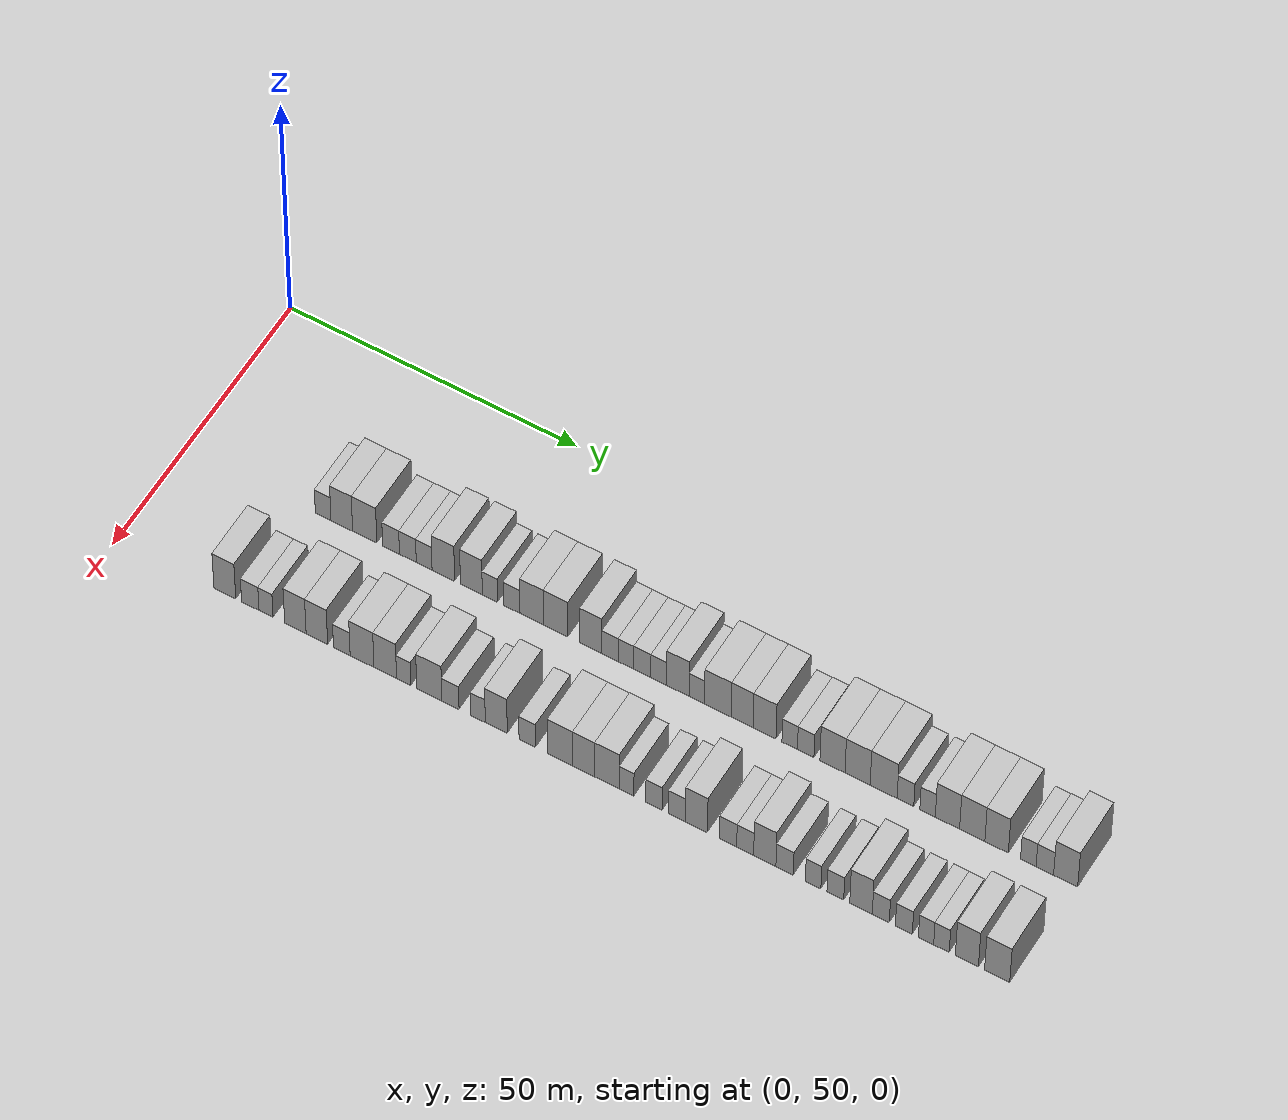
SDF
<sdf version="1.6">
 <world name="default">
  <model name="building_71">
   <static>1</static>
   <pose>25.0000 74.1208 0 0.000000 0.000000 0.000000</pose>
   <link name="link">
    <pose>0 0 3.00 0 0 0</pose>
    <collision name="collision"><geometry><box><size>10.0000 2.7130 6.0000</size></box></geometry></collision>
    <visual name="visual">
     <cast_shadows>0</cast_shadows>
     <geometry><box><size>10.0000 2.7130 6.0000</size></box></geometry>
     <material>
      <script>
       <uri>model://HANNAS_wall/materials/scripts</uri>
       <uri>model://HANNAS_wall/materials/textures</uri>
       <name>vrc/HANNAS_wall</name>
      </script>
     </material>
    </visual>
   </link>
  </model>
  <model name="building_72">
   <static>1</static>
   <pose>25.0000 77.3447 0 0.000000 0.000000 0.000000</pose>
   <link name="link">
    <pose>0 0 4.50 0 0 0</pose>
    <collision name="collision"><geometry><box><size>10.0000 3.7349 9.0000</size></box></geometry></collision>
    <visual name="visual">
     <cast_shadows>0</cast_shadows>
     <geometry><box><size>10.0000 3.7349 9.0000</size></box></geometry>
     <material>
      <script>
       <uri>model://HANNAS_wall/materials/scripts</uri>
       <uri>model://HANNAS_wall/materials/textures</uri>
       <name>vrc/HANNAS_wall</name>
      </script>
     </material>
    </visual>
   </link>
  </model>
  <model name="building_73">
   <static>1</static>
   <pose>25.0000 81.3042 0 0.000000 0.000000 0.000000</pose>
   <link name="link">
    <pose>0 0 4.50 0 0 0</pose>
    <collision name="collision"><geometry><box><size>10.0000 4.1841 9.0000</size></box></geometry></collision>
    <visual name="visual">
     <cast_shadows>0</cast_shadows>
     <geometry><box><size>10.0000 4.1841 9.0000</size></box></geometry>
     <material>
      <script>
       <uri>model://HANNAS_wall/materials/scripts</uri>
       <uri>model://HANNAS_wall/materials/textures</uri>
       <name>vrc/HANNAS_wall</name>
      </script>
     </material>
    </visual>
   </link>
  </model>
  <model name="building_74">
   <static>1</static>
   <pose>25.0000 85.8439 0 0.000000 0.000000 0.000000</pose>
   <link name="link">
    <pose>0 0 3.00 0 0 0</pose>
    <collision name="collision"><geometry><box><size>10.0000 2.8952 6.0000</size></box></geometry></collision>
    <visual name="visual">
     <cast_shadows>0</cast_shadows>
     <geometry><box><size>10.0000 2.8952 6.0000</size></box></geometry>
     <material>
      <script>
       <uri>model://HANNAS_wall/materials/scripts</uri>
       <uri>model://HANNAS_wall/materials/textures</uri>
       <name>vrc/HANNAS_wall</name>
      </script>
     </material>
    </visual>
   </link>
  </model>
  <model name="building_75">
   <static>1</static>
   <pose>25.0000 88.7409 0 0.000000 0.000000 0.000000</pose>
   <link name="link">
    <pose>0 0 3.00 0 0 0</pose>
    <collision name="collision"><geometry><box><size>10.0000 2.8988 6.0000</size></box></geometry></collision>
    <visual name="visual">
     <cast_shadows>0</cast_shadows>
     <geometry><box><size>10.0000 2.8988 6.0000</size></box></geometry>
     <material>
      <script>
       <uri>model://HANNAS_wall/materials/scripts</uri>
       <uri>model://HANNAS_wall/materials/textures</uri>
       <name>vrc/HANNAS_wall</name>
      </script>
     </material>
    </visual>
   </link>
  </model>
  <model name="building_76">
   <static>1</static>
   <pose>25.0000 91.5484 0 0.000000 0.000000 0.000000</pose>
   <link name="link">
    <pose>0 0 3.00 0 0 0</pose>
    <collision name="collision"><geometry><box><size>10.0000 2.7161 6.0000</size></box></geometry></collision>
    <visual name="visual">
     <cast_shadows>0</cast_shadows>
     <geometry><box><size>10.0000 2.7161 6.0000</size></box></geometry>
     <material>
      <script>
       <uri>model://HANNAS_wall/materials/scripts</uri>
       <uri>model://HANNAS_wall/materials/textures</uri>
       <name>vrc/HANNAS_wall</name>
      </script>
     </material>
    </visual>
   </link>
  </model>
  <model name="building_77">
   <static>1</static>
   <pose>25.0000 94.8378 0 0.000000 0.000000 0.000000</pose>
   <link name="link">
    <pose>0 0 4.50 0 0 0</pose>
    <collision name="collision"><geometry><box><size>10.0000 3.8628 9.0000</size></box></geometry></collision>
    <visual name="visual">
     <cast_shadows>0</cast_shadows>
     <geometry><box><size>10.0000 3.8628 9.0000</size></box></geometry>
     <material>
      <script>
       <uri>model://HANNAS_wall/materials/scripts</uri>
       <uri>model://HANNAS_wall/materials/textures</uri>
       <name>vrc/HANNAS_wall</name>
      </script>
     </material>
    </visual>
   </link>
  </model>
  <model name="building_78">
   <static>1</static>
   <pose>25.0000 99.6444 0 0.000000 0.000000 0.000000</pose>
   <link name="link">
    <pose>0 0 4.50 0 0 0</pose>
    <collision name="collision"><geometry><box><size>10.0000 3.7505 9.0000</size></box></geometry></collision>
    <visual name="visual">
     <cast_shadows>0</cast_shadows>
     <geometry><box><size>10.0000 3.7505 9.0000</size></box></geometry>
     <material>
      <script>
       <uri>model://HANNAS_wall/materials/scripts</uri>
       <uri>model://HANNAS_wall/materials/textures</uri>
       <name>vrc/HANNAS_wall</name>
      </script>
     </material>
    </visual>
   </link>
  </model>
  <model name="building_79">
   <static>1</static>
   <pose>25.0000 102.8215 0 0.000000 0.000000 0.000000</pose>
   <link name="link">
    <pose>0 0 3.00 0 0 0</pose>
    <collision name="collision"><geometry><box><size>10.0000 2.6037 6.0000</size></box></geometry></collision>
    <visual name="visual">
     <cast_shadows>0</cast_shadows>
     <geometry><box><size>10.0000 2.6037 6.0000</size></box></geometry>
     <material>
      <script>
       <uri>model://HANNAS_wall/materials/scripts</uri>
       <uri>model://HANNAS_wall/materials/textures</uri>
       <name>vrc/HANNAS_wall</name>
      </script>
     </material>
    </visual>
   </link>
  </model>
  <model name="building_80">
   <static>1</static>
   <pose>25.0000 106.5447 0 0.000000 0.000000 0.000000</pose>
   <link name="link">
    <pose>0 0 3.00 0 0 0</pose>
    <collision name="collision"><geometry><box><size>10.0000 2.8427 6.0000</size></box></geometry></collision>
    <visual name="visual">
     <cast_shadows>0</cast_shadows>
     <geometry><box><size>10.0000 2.8427 6.0000</size></box></geometry>
     <material>
      <script>
       <uri>model://HANNAS_wall/materials/scripts</uri>
       <uri>model://HANNAS_wall/materials/textures</uri>
       <name>vrc/HANNAS_wall</name>
      </script>
     </material>
    </visual>
   </link>
  </model>
  <model name="building_81">
   <static>1</static>
   <pose>25.0000 109.9540 0 0.000000 0.000000 0.000000</pose>
   <link name="link">
    <pose>0 0 4.50 0 0 0</pose>
    <collision name="collision"><geometry><box><size>10.0000 3.9760 9.0000</size></box></geometry></collision>
    <visual name="visual">
     <cast_shadows>0</cast_shadows>
     <geometry><box><size>10.0000 3.9760 9.0000</size></box></geometry>
     <material>
      <script>
       <uri>model://HANNAS_wall/materials/scripts</uri>
       <uri>model://HANNAS_wall/materials/textures</uri>
       <name>vrc/HANNAS_wall</name>
      </script>
     </material>
    </visual>
   </link>
  </model>
  <model name="building_82">
   <static>1</static>
   <pose>25.0000 114.0419 0 0.000000 0.000000 0.000000</pose>
   <link name="link">
    <pose>0 0 4.50 0 0 0</pose>
    <collision name="collision"><geometry><box><size>10.0000 4.1997 9.0000</size></box></geometry></collision>
    <visual name="visual">
     <cast_shadows>0</cast_shadows>
     <geometry><box><size>10.0000 4.1997 9.0000</size></box></geometry>
     <material>
      <script>
       <uri>model://HANNAS_wall/materials/scripts</uri>
       <uri>model://HANNAS_wall/materials/textures</uri>
       <name>vrc/HANNAS_wall</name>
      </script>
     </material>
    </visual>
   </link>
  </model>
  <model name="building_83">
   <static>1</static>
   <pose>25.0000 120.0219 0 0.000000 0.000000 0.000000</pose>
   <link name="link">
    <pose>0 0 4.50 0 0 0</pose>
    <collision name="collision"><geometry><box><size>10.0000 3.7603 9.0000</size></box></geometry></collision>
    <visual name="visual">
     <cast_shadows>0</cast_shadows>
     <geometry><box><size>10.0000 3.7603 9.0000</size></box></geometry>
     <material>
      <script>
       <uri>model://HANNAS_wall/materials/scripts</uri>
       <uri>model://HANNAS_wall/materials/textures</uri>
       <name>vrc/HANNAS_wall</name>
      </script>
     </material>
    </visual>
   </link>
  </model>
  <model name="building_84">
   <static>1</static>
   <pose>25.0000 123.2704 0 0.000000 0.000000 0.000000</pose>
   <link name="link">
    <pose>0 0 3.00 0 0 0</pose>
    <collision name="collision"><geometry><box><size>10.0000 2.7367 6.0000</size></box></geometry></collision>
    <visual name="visual">
     <cast_shadows>0</cast_shadows>
     <geometry><box><size>10.0000 2.7367 6.0000</size></box></geometry>
     <material>
      <script>
       <uri>model://HANNAS_wall/materials/scripts</uri>
       <uri>model://HANNAS_wall/materials/textures</uri>
       <name>vrc/HANNAS_wall</name>
      </script>
     </material>
    </visual>
   </link>
  </model>
  <model name="building_85">
   <static>1</static>
   <pose>25.0000 125.9495 0 0.000000 0.000000 0.000000</pose>
   <link name="link">
    <pose>0 0 3.00 0 0 0</pose>
    <collision name="collision"><geometry><box><size>10.0000 2.6213 6.0000</size></box></geometry></collision>
    <visual name="visual">
     <cast_shadows>0</cast_shadows>
     <geometry><box><size>10.0000 2.6213 6.0000</size></box></geometry>
     <material>
      <script>
       <uri>model://HANNAS_wall/materials/scripts</uri>
       <uri>model://HANNAS_wall/materials/textures</uri>
       <name>vrc/HANNAS_wall</name>
      </script>
     </material>
    </visual>
   </link>
  </model>
  <model name="building_86">
   <static>1</static>
   <pose>25.0000 128.7168 0 0.000000 0.000000 0.000000</pose>
   <link name="link">
    <pose>0 0 3.00 0 0 0</pose>
    <collision name="collision"><geometry><box><size>10.0000 2.9133 6.0000</size></box></geometry></collision>
    <visual name="visual">
     <cast_shadows>0</cast_shadows>
     <geometry><box><size>10.0000 2.9133 6.0000</size></box></geometry>
     <material>
      <script>
       <uri>model://HANNAS_wall/materials/scripts</uri>
       <uri>model://HANNAS_wall/materials/textures</uri>
       <name>vrc/HANNAS_wall</name>
      </script>
     </material>
    </visual>
   </link>
  </model>
  <model name="building_87">
   <static>1</static>
   <pose>25.0000 131.5019 0 0.000000 0.000000 0.000000</pose>
   <link name="link">
    <pose>0 0 3.00 0 0 0</pose>
    <collision name="collision"><geometry><box><size>10.0000 2.6570 6.0000</size></box></geometry></collision>
    <visual name="visual">
     <cast_shadows>0</cast_shadows>
     <geometry><box><size>10.0000 2.6570 6.0000</size></box></geometry>
     <material>
      <script>
       <uri>model://HANNAS_wall/materials/scripts</uri>
       <uri>model://HANNAS_wall/materials/textures</uri>
       <name>vrc/HANNAS_wall</name>
      </script>
     </material>
    </visual>
   </link>
  </model>
  <model name="building_88">
   <static>1</static>
   <pose>25.0000 134.7322 0 0.000000 0.000000 0.000000</pose>
   <link name="link">
    <pose>0 0 4.50 0 0 0</pose>
    <collision name="collision"><geometry><box><size>10.0000 3.8036 9.0000</size></box></geometry></collision>
    <visual name="visual">
     <cast_shadows>0</cast_shadows>
     <geometry><box><size>10.0000 3.8036 9.0000</size></box></geometry>
     <material>
      <script>
       <uri>model://HANNAS_wall/materials/scripts</uri>
       <uri>model://HANNAS_wall/materials/textures</uri>
       <name>vrc/HANNAS_wall</name>
      </script>
     </material>
    </visual>
   </link>
  </model>
  <model name="building_89">
   <static>1</static>
   <pose>25.0000 137.9211 0 0.000000 0.000000 0.000000</pose>
   <link name="link">
    <pose>0 0 3.00 0 0 0</pose>
    <collision name="collision"><geometry><box><size>10.0000 2.5743 6.0000</size></box></geometry></collision>
    <visual name="visual">
     <cast_shadows>0</cast_shadows>
     <geometry><box><size>10.0000 2.5743 6.0000</size></box></geometry>
     <material>
      <script>
       <uri>model://HANNAS_wall/materials/scripts</uri>
       <uri>model://HANNAS_wall/materials/textures</uri>
       <name>vrc/HANNAS_wall</name>
      </script>
     </material>
    </visual>
   </link>
  </model>
  <model name="building_90">
   <static>1</static>
   <pose>25.0000 141.4504 0 0.000000 0.000000 0.000000</pose>
   <link name="link">
    <pose>0 0 4.50 0 0 0</pose>
    <collision name="collision"><geometry><box><size>10.0000 4.4844 9.0000</size></box></geometry></collision>
    <visual name="visual">
     <cast_shadows>0</cast_shadows>
     <geometry><box><size>10.0000 4.4844 9.0000</size></box></geometry>
     <material>
      <script>
       <uri>model://HANNAS_wall/materials/scripts</uri>
       <uri>model://HANNAS_wall/materials/textures</uri>
       <name>vrc/HANNAS_wall</name>
      </script>
     </material>
    </visual>
   </link>
  </model>
  <model name="building_91">
   <static>1</static>
   <pose>25.0000 145.5411 0 0.000000 0.000000 0.000000</pose>
   <link name="link">
    <pose>0 0 4.50 0 0 0</pose>
    <collision name="collision"><geometry><box><size>10.0000 3.6970 9.0000</size></box></geometry></collision>
    <visual name="visual">
     <cast_shadows>0</cast_shadows>
     <geometry><box><size>10.0000 3.6970 9.0000</size></box></geometry>
     <material>
      <script>
       <uri>model://HANNAS_wall/materials/scripts</uri>
       <uri>model://HANNAS_wall/materials/textures</uri>
       <name>vrc/HANNAS_wall</name>
      </script>
     </material>
    </visual>
   </link>
  </model>
  <model name="building_92">
   <static>1</static>
   <pose>25.0000 149.3069 0 0.000000 0.000000 0.000000</pose>
   <link name="link">
    <pose>0 0 4.50 0 0 0</pose>
    <collision name="collision"><geometry><box><size>10.0000 3.8347 9.0000</size></box></geometry></collision>
    <visual name="visual">
     <cast_shadows>0</cast_shadows>
     <geometry><box><size>10.0000 3.8347 9.0000</size></box></geometry>
     <material>
      <script>
       <uri>model://HANNAS_wall/materials/scripts</uri>
       <uri>model://HANNAS_wall/materials/textures</uri>
       <name>vrc/HANNAS_wall</name>
      </script>
     </material>
    </visual>
   </link>
  </model>
  <model name="building_93">
   <static>1</static>
   <pose>25.0000 153.5181 0 0.000000 0.000000 0.000000</pose>
   <link name="link">
    <pose>0 0 3.00 0 0 0</pose>
    <collision name="collision"><geometry><box><size>10.0000 2.5876 6.0000</size></box></geometry></collision>
    <visual name="visual">
     <cast_shadows>0</cast_shadows>
     <geometry><box><size>10.0000 2.5876 6.0000</size></box></geometry>
     <material>
      <script>
       <uri>model://HANNAS_wall/materials/scripts</uri>
       <uri>model://HANNAS_wall/materials/textures</uri>
       <name>vrc/HANNAS_wall</name>
      </script>
     </material>
    </visual>
   </link>
  </model>
  <model name="building_94">
   <static>1</static>
   <pose>25.0000 156.1915 0 0.000000 0.000000 0.000000</pose>
   <link name="link">
    <pose>0 0 3.00 0 0 0</pose>
    <collision name="collision"><geometry><box><size>10.0000 2.7591 6.0000</size></box></geometry></collision>
    <visual name="visual">
     <cast_shadows>0</cast_shadows>
     <geometry><box><size>10.0000 2.7591 6.0000</size></box></geometry>
     <material>
      <script>
       <uri>model://HANNAS_wall/materials/scripts</uri>
       <uri>model://HANNAS_wall/materials/textures</uri>
       <name>vrc/HANNAS_wall</name>
      </script>
     </material>
    </visual>
   </link>
  </model>
  <model name="building_95">
   <static>1</static>
   <pose>25.0000 160.6584 0 0.000000 0.000000 0.000000</pose>
   <link name="link">
    <pose>0 0 4.50 0 0 0</pose>
    <collision name="collision"><geometry><box><size>10.0000 4.1747 9.0000</size></box></geometry></collision>
    <visual name="visual">
     <cast_shadows>0</cast_shadows>
     <geometry><box><size>10.0000 4.1747 9.0000</size></box></geometry>
     <material>
      <script>
       <uri>model://HANNAS_wall/materials/scripts</uri>
       <uri>model://HANNAS_wall/materials/textures</uri>
       <name>vrc/HANNAS_wall</name>
      </script>
     </material>
    </visual>
   </link>
  </model>
  <model name="building_96">
   <static>1</static>
   <pose>25.0000 164.8402 0 0.000000 0.000000 0.000000</pose>
   <link name="link">
    <pose>0 0 4.50 0 0 0</pose>
    <collision name="collision"><geometry><box><size>10.0000 4.1890 9.0000</size></box></geometry></collision>
    <visual name="visual">
     <cast_shadows>0</cast_shadows>
     <geometry><box><size>10.0000 4.1890 9.0000</size></box></geometry>
     <material>
      <script>
       <uri>model://HANNAS_wall/materials/scripts</uri>
       <uri>model://HANNAS_wall/materials/textures</uri>
       <name>vrc/HANNAS_wall</name>
      </script>
     </material>
    </visual>
   </link>
  </model>
  <model name="building_97">
   <static>1</static>
   <pose>25.0000 169.1706 0 0.000000 0.000000 0.000000</pose>
   <link name="link">
    <pose>0 0 4.50 0 0 0</pose>
    <collision name="collision"><geometry><box><size>10.0000 4.4718 9.0000</size></box></geometry></collision>
    <visual name="visual">
     <cast_shadows>0</cast_shadows>
     <geometry><box><size>10.0000 4.4718 9.0000</size></box></geometry>
     <material>
      <script>
       <uri>model://HANNAS_wall/materials/scripts</uri>
       <uri>model://HANNAS_wall/materials/textures</uri>
       <name>vrc/HANNAS_wall</name>
      </script>
     </material>
    </visual>
   </link>
  </model>
  <model name="building_98">
   <static>1</static>
   <pose>25.0000 172.7898 0 0.000000 0.000000 0.000000</pose>
   <link name="link">
    <pose>0 0 3.00 0 0 0</pose>
    <collision name="collision"><geometry><box><size>10.0000 2.7666 6.0000</size></box></geometry></collision>
    <visual name="visual">
     <cast_shadows>0</cast_shadows>
     <geometry><box><size>10.0000 2.7666 6.0000</size></box></geometry>
     <material>
      <script>
       <uri>model://HANNAS_wall/materials/scripts</uri>
       <uri>model://HANNAS_wall/materials/textures</uri>
       <name>vrc/HANNAS_wall</name>
      </script>
     </material>
    </visual>
   </link>
  </model>
  <model name="building_99">
   <static>1</static>
   <pose>25.0000 176.4530 0 0.000000 0.000000 0.000000</pose>
   <link name="link">
    <pose>0 0 3.00 0 0 0</pose>
    <collision name="collision"><geometry><box><size>10.0000 2.5599 6.0000</size></box></geometry></collision>
    <visual name="visual">
     <cast_shadows>0</cast_shadows>
     <geometry><box><size>10.0000 2.5599 6.0000</size></box></geometry>
     <material>
      <script>
       <uri>model://HANNAS_wall/materials/scripts</uri>
       <uri>model://HANNAS_wall/materials/textures</uri>
       <name>vrc/HANNAS_wall</name>
      </script>
     </material>
    </visual>
   </link>
  </model>
  <model name="building_100">
   <static>1</static>
   <pose>25.0000 179.7388 0 0.000000 0.000000 0.000000</pose>
   <link name="link">
    <pose>0 0 4.50 0 0 0</pose>
    <collision name="collision"><geometry><box><size>10.0000 4.0117 9.0000</size></box></geometry></collision>
    <visual name="visual">
     <cast_shadows>0</cast_shadows>
     <geometry><box><size>10.0000 4.0117 9.0000</size></box></geometry>
     <material>
      <script>
       <uri>model://HANNAS_wall/materials/scripts</uri>
       <uri>model://HANNAS_wall/materials/textures</uri>
       <name>vrc/HANNAS_wall</name>
      </script>
     </material>
    </visual>
   </link>
  </model>
  <model name="building_101">
   <static>1</static>
   <pose>25.0000 183.8316 0 0.000000 0.000000 0.000000</pose>
   <link name="link">
    <pose>0 0 4.50 0 0 0</pose>
    <collision name="collision"><geometry><box><size>10.0000 4.1739 9.0000</size></box></geometry></collision>
    <visual name="visual">
     <cast_shadows>0</cast_shadows>
     <geometry><box><size>10.0000 4.1739 9.0000</size></box></geometry>
     <material>
      <script>
       <uri>model://HANNAS_wall/materials/scripts</uri>
       <uri>model://HANNAS_wall/materials/textures</uri>
       <name>vrc/HANNAS_wall</name>
      </script>
     </material>
    </visual>
   </link>
  </model>
  <model name="building_102">
   <static>1</static>
   <pose>25.0000 187.8486 0 0.000000 0.000000 0.000000</pose>
   <link name="link">
    <pose>0 0 4.50 0 0 0</pose>
    <collision name="collision"><geometry><box><size>10.0000 3.8602 9.0000</size></box></geometry></collision>
    <visual name="visual">
     <cast_shadows>0</cast_shadows>
     <geometry><box><size>10.0000 3.8602 9.0000</size></box></geometry>
     <material>
      <script>
       <uri>model://HANNAS_wall/materials/scripts</uri>
       <uri>model://HANNAS_wall/materials/textures</uri>
       <name>vrc/HANNAS_wall</name>
      </script>
     </material>
    </visual>
   </link>
  </model>
  <model name="building_103">
   <static>1</static>
   <pose>25.0000 193.0552 0 0.000000 0.000000 0.000000</pose>
   <link name="link">
    <pose>0 0 3.00 0 0 0</pose>
    <collision name="collision"><geometry><box><size>10.0000 2.5529 6.0000</size></box></geometry></collision>
    <visual name="visual">
     <cast_shadows>0</cast_shadows>
     <geometry><box><size>10.0000 2.5529 6.0000</size></box></geometry>
     <material>
      <script>
       <uri>model://HANNAS_wall/materials/scripts</uri>
       <uri>model://HANNAS_wall/materials/textures</uri>
       <name>vrc/HANNAS_wall</name>
      </script>
     </material>
    </visual>
   </link>
  </model>
  <model name="building_104">
   <static>1</static>
   <pose>25.0000 195.7657 0 0.000000 0.000000 0.000000</pose>
   <link name="link">
    <pose>0 0 3.00 0 0 0</pose>
    <collision name="collision"><geometry><box><size>10.0000 2.8683 6.0000</size></box></geometry></collision>
    <visual name="visual">
     <cast_shadows>0</cast_shadows>
     <geometry><box><size>10.0000 2.8683 6.0000</size></box></geometry>
     <material>
      <script>
       <uri>model://HANNAS_wall/materials/scripts</uri>
       <uri>model://HANNAS_wall/materials/textures</uri>
       <name>vrc/HANNAS_wall</name>
      </script>
     </material>
    </visual>
   </link>
  </model>
  <model name="building_105">
   <static>1</static>
   <pose>25.0000 199.1739 0 0.000000 0.000000 0.000000</pose>
   <link name="link">
    <pose>0 0 4.50 0 0 0</pose>
    <collision name="collision"><geometry><box><size>10.0000 3.9481 9.0000</size></box></geometry></collision>
    <visual name="visual">
     <cast_shadows>0</cast_shadows>
     <geometry><box><size>10.0000 3.9481 9.0000</size></box></geometry>
     <material>
      <script>
       <uri>model://HANNAS_wall/materials/scripts</uri>
       <uri>model://HANNAS_wall/materials/textures</uri>
       <name>vrc/HANNAS_wall</name>
      </script>
     </material>
    </visual>
   </link>
  </model>
  <model name="building_174">
   <static>1</static>
   <pose>44.0000 68.8561 0 0.000000 0.000000 0.000000</pose>
   <link name="link">
    <pose>0 0 4.50 0 0 0</pose>
    <collision name="collision"><geometry><box><size>10.0000 3.7770 9.0000</size></box></geometry></collision>
    <visual name="visual">
     <cast_shadows>0</cast_shadows>
     <geometry><box><size>10.0000 3.7770 9.0000</size></box></geometry>
     <material>
      <script>
       <uri>model://HANNAS_wall/materials/scripts</uri>
       <uri>model://HANNAS_wall/materials/textures</uri>
       <name>vrc/HANNAS_wall</name>
      </script>
     </material>
    </visual>
   </link>
  </model>
  <model name="building_175">
   <static>1</static>
   <pose>44.0000 73.2432 0 0.000000 0.000000 0.000000</pose>
   <link name="link">
    <pose>0 0 3.00 0 0 0</pose>
    <collision name="collision"><geometry><box><size>10.0000 2.9972 6.0000</size></box></geometry></collision>
    <visual name="visual">
     <cast_shadows>0</cast_shadows>
     <geometry><box><size>10.0000 2.9972 6.0000</size></box></geometry>
     <material>
      <script>
       <uri>model://HANNAS_wall/materials/scripts</uri>
       <uri>model://HANNAS_wall/materials/textures</uri>
       <name>vrc/HANNAS_wall</name>
      </script>
     </material>
    </visual>
   </link>
  </model>
  <model name="building_176">
   <static>1</static>
   <pose>44.0000 75.9557 0 0.000000 0.000000 0.000000</pose>
   <link name="link">
    <pose>0 0 3.00 0 0 0</pose>
    <collision name="collision"><geometry><box><size>10.0000 2.4278 6.0000</size></box></geometry></collision>
    <visual name="visual">
     <cast_shadows>0</cast_shadows>
     <geometry><box><size>10.0000 2.4278 6.0000</size></box></geometry>
     <material>
      <script>
       <uri>model://HANNAS_wall/materials/scripts</uri>
       <uri>model://HANNAS_wall/materials/textures</uri>
       <name>vrc/HANNAS_wall</name>
      </script>
     </material>
    </visual>
   </link>
  </model>
  <model name="building_177">
   <static>1</static>
   <pose>44.0000 81.0101 0 0.000000 0.000000 0.000000</pose>
   <link name="link">
    <pose>0 0 4.50 0 0 0</pose>
    <collision name="collision"><geometry><box><size>10.0000 3.6809 9.0000</size></box></geometry></collision>
    <visual name="visual">
     <cast_shadows>0</cast_shadows>
     <geometry><box><size>10.0000 3.6809 9.0000</size></box></geometry>
     <material>
      <script>
       <uri>model://HANNAS_wall/materials/scripts</uri>
       <uri>model://HANNAS_wall/materials/textures</uri>
       <name>vrc/HANNAS_wall</name>
      </script>
     </material>
    </visual>
   </link>
  </model>
  <model name="building_178">
   <static>1</static>
   <pose>44.0000 84.6997 0 0.000000 0.000000 0.000000</pose>
   <link name="link">
    <pose>0 0 4.50 0 0 0</pose>
    <collision name="collision"><geometry><box><size>10.0000 3.6982 9.0000</size></box></geometry></collision>
    <visual name="visual">
     <cast_shadows>0</cast_shadows>
     <geometry><box><size>10.0000 3.6982 9.0000</size></box></geometry>
     <material>
      <script>
       <uri>model://HANNAS_wall/materials/scripts</uri>
       <uri>model://HANNAS_wall/materials/textures</uri>
       <name>vrc/HANNAS_wall</name>
      </script>
     </material>
    </visual>
   </link>
  </model>
  <model name="building_179">
   <static>1</static>
   <pose>44.0000 88.9727 0 0.000000 0.000000 0.000000</pose>
   <link name="link">
    <pose>0 0 3.00 0 0 0</pose>
    <collision name="collision"><geometry><box><size>10.0000 2.8478 6.0000</size></box></geometry></collision>
    <visual name="visual">
     <cast_shadows>0</cast_shadows>
     <geometry><box><size>10.0000 2.8478 6.0000</size></box></geometry>
     <material>
      <script>
       <uri>model://HANNAS_wall/materials/scripts</uri>
       <uri>model://HANNAS_wall/materials/textures</uri>
       <name>vrc/HANNAS_wall</name>
      </script>
     </material>
    </visual>
   </link>
  </model>
  <model name="building_180">
   <static>1</static>
   <pose>44.0000 92.4333 0 0.000000 0.000000 0.000000</pose>
   <link name="link">
    <pose>0 0 4.50 0 0 0</pose>
    <collision name="collision"><geometry><box><size>10.0000 4.0735 9.0000</size></box></geometry></collision>
    <visual name="visual">
     <cast_shadows>0</cast_shadows>
     <geometry><box><size>10.0000 4.0735 9.0000</size></box></geometry>
     <material>
      <script>
       <uri>model://HANNAS_wall/materials/scripts</uri>
       <uri>model://HANNAS_wall/materials/textures</uri>
       <name>vrc/HANNAS_wall</name>
      </script>
     </material>
    </visual>
   </link>
  </model>
  <model name="building_181">
   <static>1</static>
   <pose>44.0000 96.3997 0 0.000000 0.000000 0.000000</pose>
   <link name="link">
    <pose>0 0 4.50 0 0 0</pose>
    <collision name="collision"><geometry><box><size>10.0000 3.8592 9.0000</size></box></geometry></collision>
    <visual name="visual">
     <cast_shadows>0</cast_shadows>
     <geometry><box><size>10.0000 3.8592 9.0000</size></box></geometry>
     <material>
      <script>
       <uri>model://HANNAS_wall/materials/scripts</uri>
       <uri>model://HANNAS_wall/materials/textures</uri>
       <name>vrc/HANNAS_wall</name>
      </script>
     </material>
    </visual>
   </link>
  </model>
  <model name="building_182">
   <static>1</static>
   <pose>44.0000 99.5477 0 0.000000 0.000000 0.000000</pose>
   <link name="link">
    <pose>0 0 3.00 0 0 0</pose>
    <collision name="collision"><geometry><box><size>10.0000 2.4370 6.0000</size></box></geometry></collision>
    <visual name="visual">
     <cast_shadows>0</cast_shadows>
     <geometry><box><size>10.0000 2.4370 6.0000</size></box></geometry>
     <material>
      <script>
       <uri>model://HANNAS_wall/materials/scripts</uri>
       <uri>model://HANNAS_wall/materials/textures</uri>
       <name>vrc/HANNAS_wall</name>
      </script>
     </material>
    </visual>
   </link>
  </model>
  <model name="building_183">
   <static>1</static>
   <pose>44.0000 103.8998 0 0.000000 0.000000 0.000000</pose>
   <link name="link">
    <pose>0 0 4.50 0 0 0</pose>
    <collision name="collision"><geometry><box><size>10.0000 4.2671 9.0000</size></box></geometry></collision>
    <visual name="visual">
     <cast_shadows>0</cast_shadows>
     <geometry><box><size>10.0000 4.2671 9.0000</size></box></geometry>
     <material>
      <script>
       <uri>model://HANNAS_wall/materials/scripts</uri>
       <uri>model://HANNAS_wall/materials/textures</uri>
       <name>vrc/HANNAS_wall</name>
      </script>
     </material>
    </visual>
   </link>
  </model>
  <model name="building_184">
   <static>1</static>
   <pose>44.0000 107.5005 0 0.000000 0.000000 0.000000</pose>
   <link name="link">
    <pose>0 0 3.00 0 0 0</pose>
    <collision name="collision"><geometry><box><size>10.0000 2.9343 6.0000</size></box></geometry></collision>
    <visual name="visual">
     <cast_shadows>0</cast_shadows>
     <geometry><box><size>10.0000 2.9343 6.0000</size></box></geometry>
     <material>
      <script>
       <uri>model://HANNAS_wall/materials/scripts</uri>
       <uri>model://HANNAS_wall/materials/textures</uri>
       <name>vrc/HANNAS_wall</name>
      </script>
     </material>
    </visual>
   </link>
  </model>
  <model name="building_185">
   <static>1</static>
   <pose>44.0000 112.1895 0 0.000000 0.000000 0.000000</pose>
   <link name="link">
    <pose>0 0 3.00 0 0 0</pose>
    <collision name="collision"><geometry><box><size>10.0000 2.4437 6.0000</size></box></geometry></collision>
    <visual name="visual">
     <cast_shadows>0</cast_shadows>
     <geometry><box><size>10.0000 2.4437 6.0000</size></box></geometry>
     <material>
      <script>
       <uri>model://HANNAS_wall/materials/scripts</uri>
       <uri>model://HANNAS_wall/materials/textures</uri>
       <name>vrc/HANNAS_wall</name>
      </script>
     </material>
    </visual>
   </link>
  </model>
  <model name="building_186">
   <static>1</static>
   <pose>44.0000 115.2708 0 0.000000 0.000000 0.000000</pose>
   <link name="link">
    <pose>0 0 4.50 0 0 0</pose>
    <collision name="collision"><geometry><box><size>10.0000 3.7189 9.0000</size></box></geometry></collision>
    <visual name="visual">
     <cast_shadows>0</cast_shadows>
     <geometry><box><size>10.0000 3.7189 9.0000</size></box></geometry>
     <material>
      <script>
       <uri>model://HANNAS_wall/materials/scripts</uri>
       <uri>model://HANNAS_wall/materials/textures</uri>
       <name>vrc/HANNAS_wall</name>
      </script>
     </material>
    </visual>
   </link>
  </model>
  <model name="building_187">
   <static>1</static>
   <pose>44.0000 120.5224 0 0.000000 0.000000 0.000000</pose>
   <link name="link">
    <pose>0 0 3.00 0 0 0</pose>
    <collision name="collision"><geometry><box><size>10.0000 2.7844 6.0000</size></box></geometry></collision>
    <visual name="visual">
     <cast_shadows>0</cast_shadows>
     <geometry><box><size>10.0000 2.7844 6.0000</size></box></geometry>
     <material>
      <script>
       <uri>model://HANNAS_wall/materials/scripts</uri>
       <uri>model://HANNAS_wall/materials/textures</uri>
       <name>vrc/HANNAS_wall</name>
      </script>
     </material>
    </visual>
   </link>
  </model>
  <model name="building_188">
   <static>1</static>
   <pose>44.0000 126.0477 0 0.000000 0.000000 0.000000</pose>
   <link name="link">
    <pose>0 0 4.50 0 0 0</pose>
    <collision name="collision"><geometry><box><size>10.0000 4.2660 9.0000</size></box></geometry></collision>
    <visual name="visual">
     <cast_shadows>0</cast_shadows>
     <geometry><box><size>10.0000 4.2660 9.0000</size></box></geometry>
     <material>
      <script>
       <uri>model://HANNAS_wall/materials/scripts</uri>
       <uri>model://HANNAS_wall/materials/textures</uri>
       <name>vrc/HANNAS_wall</name>
      </script>
     </material>
    </visual>
   </link>
  </model>
  <model name="building_189">
   <static>1</static>
   <pose>44.0000 130.0195 0 0.000000 0.000000 0.000000</pose>
   <link name="link">
    <pose>0 0 4.50 0 0 0</pose>
    <collision name="collision"><geometry><box><size>10.0000 3.6776 9.0000</size></box></geometry></collision>
    <visual name="visual">
     <cast_shadows>0</cast_shadows>
     <geometry><box><size>10.0000 3.6776 9.0000</size></box></geometry>
     <material>
      <script>
       <uri>model://HANNAS_wall/materials/scripts</uri>
       <uri>model://HANNAS_wall/materials/textures</uri>
       <name>vrc/HANNAS_wall</name>
      </script>
     </material>
    </visual>
   </link>
  </model>
  <model name="building_190">
   <static>1</static>
   <pose>44.0000 133.9274 0 0.000000 0.000000 0.000000</pose>
   <link name="link">
    <pose>0 0 4.50 0 0 0</pose>
    <collision name="collision"><geometry><box><size>10.0000 4.1381 9.0000</size></box></geometry></collision>
    <visual name="visual">
     <cast_shadows>0</cast_shadows>
     <geometry><box><size>10.0000 4.1381 9.0000</size></box></geometry>
     <material>
      <script>
       <uri>model://HANNAS_wall/materials/scripts</uri>
       <uri>model://HANNAS_wall/materials/textures</uri>
       <name>vrc/HANNAS_wall</name>
      </script>
     </material>
    </visual>
   </link>
  </model>
  <model name="building_191">
   <static>1</static>
   <pose>44.0000 137.2224 0 0.000000 0.000000 0.000000</pose>
   <link name="link">
    <pose>0 0 3.00 0 0 0</pose>
    <collision name="collision"><geometry><box><size>10.0000 2.4520 6.0000</size></box></geometry></collision>
    <visual name="visual">
     <cast_shadows>0</cast_shadows>
     <geometry><box><size>10.0000 2.4520 6.0000</size></box></geometry>
     <material>
      <script>
       <uri>model://HANNAS_wall/materials/scripts</uri>
       <uri>model://HANNAS_wall/materials/textures</uri>
       <name>vrc/HANNAS_wall</name>
      </script>
     </material>
    </visual>
   </link>
  </model>
  <model name="building_192">
   <static>1</static>
   <pose>44.0000 141.8140 0 0.000000 0.000000 0.000000</pose>
   <link name="link">
    <pose>0 0 3.00 0 0 0</pose>
    <collision name="collision"><geometry><box><size>10.0000 2.7311 6.0000</size></box></geometry></collision>
    <visual name="visual">
     <cast_shadows>0</cast_shadows>
     <geometry><box><size>10.0000 2.7311 6.0000</size></box></geometry>
     <material>
      <script>
       <uri>model://HANNAS_wall/materials/scripts</uri>
       <uri>model://HANNAS_wall/materials/textures</uri>
       <name>vrc/HANNAS_wall</name>
      </script>
     </material>
    </visual>
   </link>
  </model>
  <model name="building_193">
   <static>1</static>
   <pose>44.0000 145.6141 0 0.000000 0.000000 0.000000</pose>
   <link name="link">
    <pose>0 0 3.00 0 0 0</pose>
    <collision name="collision"><geometry><box><size>10.0000 2.8692 6.0000</size></box></geometry></collision>
    <visual name="visual">
     <cast_shadows>0</cast_shadows>
     <geometry><box><size>10.0000 2.8692 6.0000</size></box></geometry>
     <material>
      <script>
       <uri>model://HANNAS_wall/materials/scripts</uri>
       <uri>model://HANNAS_wall/materials/textures</uri>
       <name>vrc/HANNAS_wall</name>
      </script>
     </material>
    </visual>
   </link>
  </model>
  <model name="building_194">
   <static>1</static>
   <pose>44.0000 148.8898 0 0.000000 0.000000 0.000000</pose>
   <link name="link">
    <pose>0 0 4.50 0 0 0</pose>
    <collision name="collision"><geometry><box><size>10.0000 3.6823 9.0000</size></box></geometry></collision>
    <visual name="visual">
     <cast_shadows>0</cast_shadows>
     <geometry><box><size>10.0000 3.6823 9.0000</size></box></geometry>
     <material>
      <script>
       <uri>model://HANNAS_wall/materials/scripts</uri>
       <uri>model://HANNAS_wall/materials/textures</uri>
       <name>vrc/HANNAS_wall</name>
      </script>
     </material>
    </visual>
   </link>
  </model>
  <model name="building_195">
   <static>1</static>
   <pose>44.0000 154.1663 0 0.000000 0.000000 0.000000</pose>
   <link name="link">
    <pose>0 0 3.00 0 0 0</pose>
    <collision name="collision"><geometry><box><size>10.0000 2.8707 6.0000</size></box></geometry></collision>
    <visual name="visual">
     <cast_shadows>0</cast_shadows>
     <geometry><box><size>10.0000 2.8707 6.0000</size></box></geometry>
     <material>
      <script>
       <uri>model://HANNAS_wall/materials/scripts</uri>
       <uri>model://HANNAS_wall/materials/textures</uri>
       <name>vrc/HANNAS_wall</name>
      </script>
     </material>
    </visual>
   </link>
  </model>
  <model name="building_196">
   <static>1</static>
   <pose>44.0000 157.0101 0 0.000000 0.000000 0.000000</pose>
   <link name="link">
    <pose>0 0 3.00 0 0 0</pose>
    <collision name="collision"><geometry><box><size>10.0000 2.8169 6.0000</size></box></geometry></collision>
    <visual name="visual">
     <cast_shadows>0</cast_shadows>
     <geometry><box><size>10.0000 2.8169 6.0000</size></box></geometry>
     <material>
      <script>
       <uri>model://HANNAS_wall/materials/scripts</uri>
       <uri>model://HANNAS_wall/materials/textures</uri>
       <name>vrc/HANNAS_wall</name>
      </script>
     </material>
    </visual>
   </link>
  </model>
  <model name="building_197">
   <static>1</static>
   <pose>44.0000 160.2679 0 0.000000 0.000000 0.000000</pose>
   <link name="link">
    <pose>0 0 4.50 0 0 0</pose>
    <collision name="collision"><geometry><box><size>10.0000 3.6988 9.0000</size></box></geometry></collision>
    <visual name="visual">
     <cast_shadows>0</cast_shadows>
     <geometry><box><size>10.0000 3.6988 9.0000</size></box></geometry>
     <material>
      <script>
       <uri>model://HANNAS_wall/materials/scripts</uri>
       <uri>model://HANNAS_wall/materials/textures</uri>
       <name>vrc/HANNAS_wall</name>
      </script>
     </material>
    </visual>
   </link>
  </model>
  <model name="building_198">
   <static>1</static>
   <pose>44.0000 163.5566 0 0.000000 0.000000 0.000000</pose>
   <link name="link">
    <pose>0 0 3.00 0 0 0</pose>
    <collision name="collision"><geometry><box><size>10.0000 2.8787 6.0000</size></box></geometry></collision>
    <visual name="visual">
     <cast_shadows>0</cast_shadows>
     <geometry><box><size>10.0000 2.8787 6.0000</size></box></geometry>
     <material>
      <script>
       <uri>model://HANNAS_wall/materials/scripts</uri>
       <uri>model://HANNAS_wall/materials/textures</uri>
       <name>vrc/HANNAS_wall</name>
      </script>
     </material>
    </visual>
   </link>
  </model>
  <model name="building_199">
   <static>1</static>
   <pose>44.0000 168.2779 0 0.000000 0.000000 0.000000</pose>
   <link name="link">
    <pose>0 0 3.00 0 0 0</pose>
    <collision name="collision"><geometry><box><size>10.0000 2.5638 6.0000</size></box></geometry></collision>
    <visual name="visual">
     <cast_shadows>0</cast_shadows>
     <geometry><box><size>10.0000 2.5638 6.0000</size></box></geometry>
     <material>
      <script>
       <uri>model://HANNAS_wall/materials/scripts</uri>
       <uri>model://HANNAS_wall/materials/textures</uri>
       <name>vrc/HANNAS_wall</name>
      </script>
     </material>
    </visual>
   </link>
  </model>
  <model name="building_200">
   <static>1</static>
   <pose>44.0000 171.9427 0 0.000000 0.000000 0.000000</pose>
   <link name="link">
    <pose>0 0 3.00 0 0 0</pose>
    <collision name="collision"><geometry><box><size>10.0000 2.7659 6.0000</size></box></geometry></collision>
    <visual name="visual">
     <cast_shadows>0</cast_shadows>
     <geometry><box><size>10.0000 2.7659 6.0000</size></box></geometry>
     <material>
      <script>
       <uri>model://HANNAS_wall/materials/scripts</uri>
       <uri>model://HANNAS_wall/materials/textures</uri>
       <name>vrc/HANNAS_wall</name>
      </script>
     </material>
    </visual>
   </link>
  </model>
  <model name="building_201">
   <static>1</static>
   <pose>44.0000 176.1821 0 0.000000 0.000000 0.000000</pose>
   <link name="link">
    <pose>0 0 4.50 0 0 0</pose>
    <collision name="collision"><geometry><box><size>10.0000 3.7128 9.0000</size></box></geometry></collision>
    <visual name="visual">
     <cast_shadows>0</cast_shadows>
     <geometry><box><size>10.0000 3.7128 9.0000</size></box></geometry>
     <material>
      <script>
       <uri>model://HANNAS_wall/materials/scripts</uri>
       <uri>model://HANNAS_wall/materials/textures</uri>
       <name>vrc/HANNAS_wall</name>
      </script>
     </material>
    </visual>
   </link>
  </model>
  <model name="building_202">
   <static>1</static>
   <pose>44.0000 179.4351 0 0.000000 0.000000 0.000000</pose>
   <link name="link">
    <pose>0 0 3.00 0 0 0</pose>
    <collision name="collision"><geometry><box><size>10.0000 2.7933 6.0000</size></box></geometry></collision>
    <visual name="visual">
     <cast_shadows>0</cast_shadows>
     <geometry><box><size>10.0000 2.7933 6.0000</size></box></geometry>
     <material>
      <script>
       <uri>model://HANNAS_wall/materials/scripts</uri>
       <uri>model://HANNAS_wall/materials/textures</uri>
       <name>vrc/HANNAS_wall</name>
      </script>
     </material>
    </visual>
   </link>
  </model>
  <model name="building_203">
   <static>1</static>
   <pose>44.0000 183.2213 0 0.000000 0.000000 0.000000</pose>
   <link name="link">
    <pose>0 0 3.00 0 0 0</pose>
    <collision name="collision"><geometry><box><size>10.0000 2.7791 6.0000</size></box></geometry></collision>
    <visual name="visual">
     <cast_shadows>0</cast_shadows>
     <geometry><box><size>10.0000 2.7791 6.0000</size></box></geometry>
     <material>
      <script>
       <uri>model://HANNAS_wall/materials/scripts</uri>
       <uri>model://HANNAS_wall/materials/textures</uri>
       <name>vrc/HANNAS_wall</name>
      </script>
     </material>
    </visual>
   </link>
  </model>
  <model name="building_204">
   <static>1</static>
   <pose>44.0000 186.8614 0 0.000000 0.000000 0.000000</pose>
   <link name="link">
    <pose>0 0 3.00 0 0 0</pose>
    <collision name="collision"><geometry><box><size>10.0000 2.5010 6.0000</size></box></geometry></collision>
    <visual name="visual">
     <cast_shadows>0</cast_shadows>
     <geometry><box><size>10.0000 2.5010 6.0000</size></box></geometry>
     <material>
      <script>
       <uri>model://HANNAS_wall/materials/scripts</uri>
       <uri>model://HANNAS_wall/materials/textures</uri>
       <name>vrc/HANNAS_wall</name>
      </script>
     </material>
    </visual>
   </link>
  </model>
  <model name="building_205">
   <static>1</static>
   <pose>44.0000 189.3871 0 0.000000 0.000000 0.000000</pose>
   <link name="link">
    <pose>0 0 3.00 0 0 0</pose>
    <collision name="collision"><geometry><box><size>10.0000 2.5506 6.0000</size></box></geometry></collision>
    <visual name="visual">
     <cast_shadows>0</cast_shadows>
     <geometry><box><size>10.0000 2.5506 6.0000</size></box></geometry>
     <material>
      <script>
       <uri>model://HANNAS_wall/materials/scripts</uri>
       <uri>model://HANNAS_wall/materials/textures</uri>
       <name>vrc/HANNAS_wall</name>
      </script>
     </material>
    </visual>
   </link>
  </model>
  <model name="building_206">
   <static>1</static>
   <pose>44.0000 193.5454 0 0.000000 0.000000 0.000000</pose>
   <link name="link">
    <pose>0 0 4.50 0 0 0</pose>
    <collision name="collision"><geometry><box><size>10.0000 3.7660 9.0000</size></box></geometry></collision>
    <visual name="visual">
     <cast_shadows>0</cast_shadows>
     <geometry><box><size>10.0000 3.7660 9.0000</size></box></geometry>
     <material>
      <script>
       <uri>model://HANNAS_wall/materials/scripts</uri>
       <uri>model://HANNAS_wall/materials/textures</uri>
       <name>vrc/HANNAS_wall</name>
      </script>
     </material>
    </visual>
   </link>
  </model>
  <model name="building_207">
   <static>1</static>
   <pose>44.0000 198.4794 0 0.000000 0.000000 0.000000</pose>
   <link name="link">
    <pose>0 0 4.50 0 0 0</pose>
    <collision name="collision"><geometry><box><size>10.0000 4.1020 9.0000</size></box></geometry></collision>
    <visual name="visual">
     <cast_shadows>0</cast_shadows>
     <geometry><box><size>10.0000 4.1020 9.0000</size></box></geometry>
     <material>
      <script>
       <uri>model://HANNAS_wall/materials/scripts</uri>
       <uri>model://HANNAS_wall/materials/textures</uri>
       <name>vrc/HANNAS_wall</name>
      </script>
     </material>
    </visual>
   </link>
  </model>
 </world>
</sdf>
